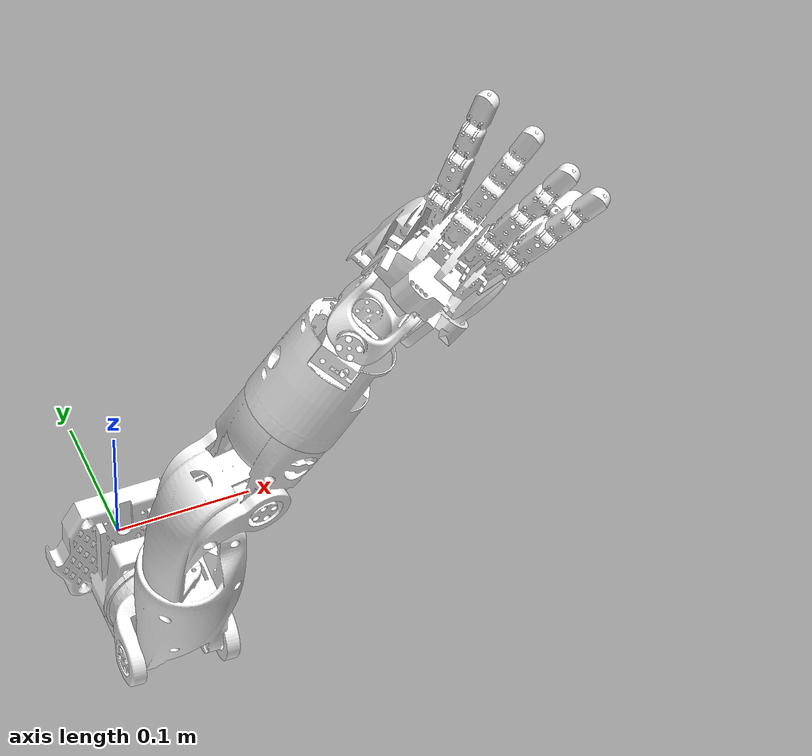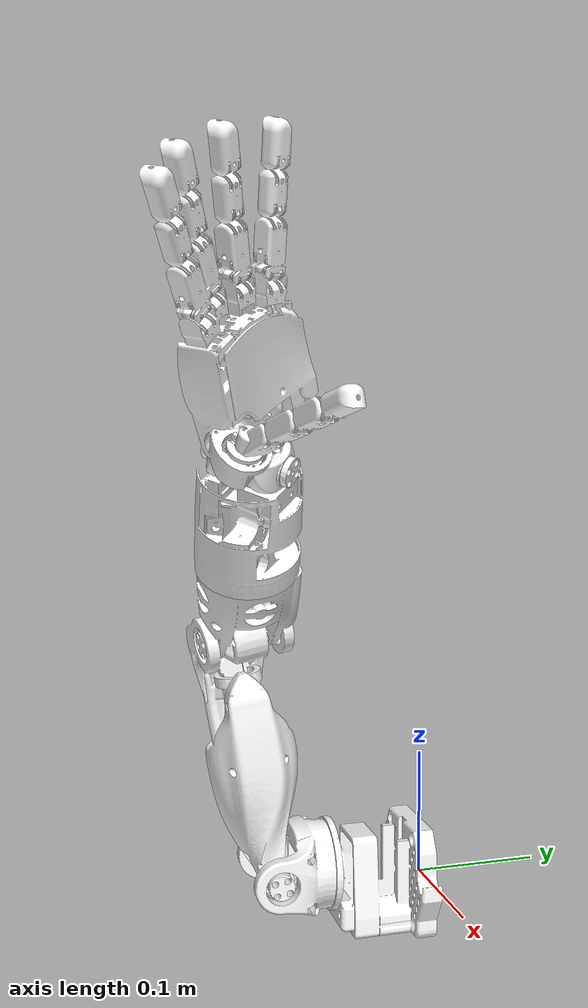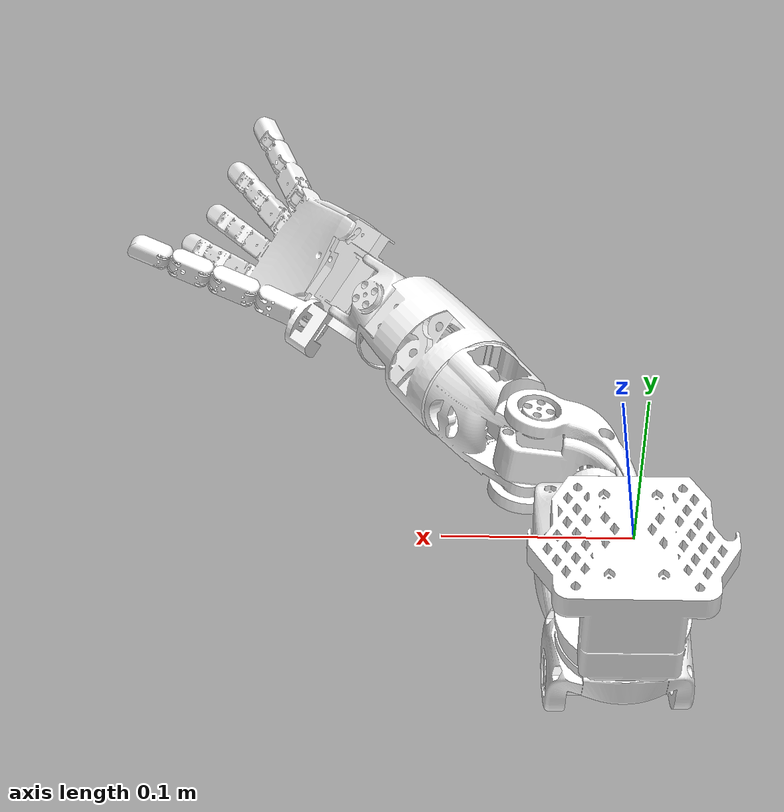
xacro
<?xml version="1.0"?>
<robot xmlns:xacro="http://www.ros.org/wiki/xacro" name="Arm_urdf">
    <xacro:arg name="initial_positions_file" default="initial_positions.yaml" />

    <!-- Import Arm_urdf urdf file -->
    <xacro:include filename="$(find Arm_urdf)/urdf/Arm_urdf.urdf" />

    <!-- Import control_xacro -->
    <xacro:include filename="Arm_urdf.ros2_control.xacro" />

    <xacro:Arm_urdf_ros2_control name="FakeSystem" initial_positions_file="$(arg initial_positions_file)"/>

</robot>

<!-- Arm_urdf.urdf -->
<robot
  name="Arm_urdf">
  <link
    name="base_link">
    <inertial>
      <origin
        xyz="0.00023729 -0.029773 -0.005728"
        rpy="0 0 0" />
      <mass
        value="0.20293" />
      <inertia
        ixx="0.00017245"
        ixy="4.1786E-07"
        ixz="-4.8345E-07"
        iyy="0.00021038"
        iyz="-3.0627E-05"
        izz="0.00015077" />
    </inertial>
    <visual>
      <origin
        xyz="0 0 0"
        rpy="0 0 0" />
      <geometry>
        <mesh
          filename="package://Arm_urdf/meshes/base_link.STL" />
      </geometry>
      <material
        name="">
        <color
          rgba="1 1 1 1" />
      </material>
    </visual>
    <collision>
      <origin
        xyz="0 0 0"
        rpy="0 0 0" />
      <geometry>
        <mesh
          filename="package://Arm_urdf/meshes/base_link.STL" />
      </geometry>
    </collision>
  </link>
  <link
    name="Link_1">
    <inertial>
      <origin
        xyz="-0.00015608 -0.029206 0.0011045"
        rpy="0 0 0" />
      <mass
        value="0.11071" />
      <inertia
        ixx="3.5305E-05"
        ixy="-9.4741E-09"
        ixz="-1.082E-07"
        iyy="2.324E-05"
        iyz="1.3454E-07"
        izz="3.2077E-05" />
    </inertial>
    <visual>
      <origin
        xyz="0 0 0"
        rpy="0 0 0" />
      <geometry>
        <mesh
          filename="package://Arm_urdf/meshes/Link_1.STL" />
      </geometry>
      <material
        name="">
        <color
          rgba="1 1 1 1" />
      </material>
    </visual>
    <collision>
      <origin
        xyz="0 0 0"
        rpy="0 0 0" />
      <geometry>
        <mesh
          filename="package://Arm_urdf/meshes/Link_1.STL" />
      </geometry>
    </collision>
  </link>
  <joint
    name="Joint_1"
    type="continuous">
    <origin
      xyz="-0.00051497 -0.067362 0.014563"
      rpy="0 0 0" />
    <parent
      link="base_link" />
    <child
      link="Link_1" />
    <axis
      xyz="0 -1 0" />
    <limit
      lower="0"
      upper="0"
      effort="0"
      velocity="0" />
  </joint>
  <link
    name="Link_2">
    <inertial>
      <origin
        xyz="-0.035445 -0.012976 0.071106"
        rpy="0 0 0" />
      <mass
        value="0.26865" />
      <inertia
        ixx="0.0002599"
        ixy="2.8092E-06"
        ixz="-4.2547E-05"
        iyy="0.00034834"
        iyz="1.5542E-05"
        izz="0.00013303" />
    </inertial>
    <visual>
      <origin
        xyz="0 0 0"
        rpy="0 0 0" />
      <geometry>
        <mesh
          filename="package://Arm_urdf/meshes/Link_2.STL" />
      </geometry>
      <material
        name="">
        <color
          rgba="1 1 1 1" />
      </material>
    </visual>
    <collision>
      <origin
        xyz="0 0 0"
        rpy="0 0 0" />
      <geometry>
        <mesh
          filename="package://Arm_urdf/meshes/Link_2.STL" />
      </geometry>
    </collision>
  </link>
  <joint
    name="Joint_2"
    type="revolute">
    <origin
      xyz="0.040276 -0.056 -0.0011666"
      rpy="0 0 0" />
    <parent
      link="Link_1" />
    <child
      link="Link_2" />
    <axis
      xyz="0.99939 0 -0.034899" />
    <limit
      lower="-0.1"
      upper="2.7"
      effort="0"
      velocity="0" />
  </joint>
  <link
    name="Link_3">
    <inertial>
      <origin
        xyz="0.0029697 -0.0033585 0.021864"
        rpy="0 0 0" />
      <mass
        value="0.12862" />
      <inertia
        ixx="0.00013343"
        ixy="1.1319E-06"
        ixz="-5.0845E-05"
        iyy="0.00018346"
        iyz="1.3898E-05"
        izz="6.271E-05" />
    </inertial>
    <visual>
      <origin
        xyz="0 0 0"
        rpy="0 0 0" />
      <geometry>
        <mesh
          filename="package://Arm_urdf/meshes/Link_3.STL" />
      </geometry>
      <material
        name="">
        <color
          rgba="1 1 1 1" />
      </material>
    </visual>
    <collision>
      <origin
        xyz="0 0 0"
        rpy="0 0 0" />
      <geometry>
        <mesh
          filename="package://Arm_urdf/meshes/Link_3.STL" />
      </geometry>
    </collision>
  </link>
  <joint
    name="Joint_3"
    type="revolute">
    <origin
      xyz="-0.038652 -0.024501 0.14475"
      rpy="0 0 0" />
    <parent
      link="Link_2" />
    <child
      link="Link_3" />
    <axis
      xyz="0.024925 -0.16804 0.98546" />
    <limit
      lower="-1.46"
      upper="1.20"
      effort="0"
      velocity="0" />
  </joint>
  <link
    name="Link_4">
    <inertial>
      <origin
        xyz="0.015842 0.029079 0.040767"
        rpy="0 0 0" />
      <mass
        value="0.085467" />
      <inertia
        ixx="3.1068E-05"
        ixy="-7.2268E-07"
        ixz="-9.2077E-06"
        iyy="4.4353E-05"
        iyz="2.1413E-06"
        izz="2.2194E-05" />
    </inertial>
    <visual>
      <origin
        xyz="0 0 0"
        rpy="0 0 0" />
      <geometry>
        <mesh
          filename="package://Arm_urdf/meshes/Link_4.STL" />
      </geometry>
      <material
        name="">
        <color
          rgba="1 1 1 1" />
      </material>
    </visual>
    <collision>
      <origin
        xyz="0 0 0"
        rpy="0 0 0" />
      <geometry>
        <mesh
          filename="package://Arm_urdf/meshes/Link_4.STL" />
      </geometry>
    </collision>
  </link>
  <joint
    name="Joint_4"
    type="revolute">
    <origin
      xyz="0.043801 -0.035078 0.047707"
      rpy="0 0 0" />
    <parent
      link="Link_3" />
    <child
      link="Link_4" />
    <axis
      xyz="0.14399 -0.97489 -0.16988" />
    <limit
      lower="-1.90"
      upper="0.50"
      effort="0"
      velocity="0" />
  </joint>
  <link
    name="Link_5">
    <inertial>
      <origin
        xyz="0.0189420196962599 7.81016898752374E-05 0.0352984344105795"
        rpy="0 0 0" />
      <mass
        value="0.090721644131545" />
      <inertia
        ixx="6.09731078201487E-05"
        ixy="5.79175133763387E-06"
        ixz="-6.52412539068886E-06"
        iyy="6.61898439393332E-05"
        iyz="-7.23406883275487E-06"
        izz="4.52650445318259E-05" />
    </inertial>
    <visual>
      <origin
        xyz="0 0 0"
        rpy="0 0 0" />
      <geometry>
        <mesh
          filename="package://Arm_urdf/meshes/Link_5.STL" />
      </geometry>
      <material
        name="">
        <color
          rgba="1 1 1 1" />
      </material>
    </visual>
    <collision>
      <origin
        xyz="0 0 0"
        rpy="0 0 0" />
      <geometry>
        <mesh
          filename="package://Arm_urdf/meshes/Link_5.STL" />
      </geometry>
    </collision>
  </link>
  <joint
    name="Joint_5"
    type="revolute">
    <origin
      xyz="0.028905 0.029268 0.059038"
      rpy="0 0 0" />
    <parent
      link="Link_4" />
    <child
      link="Link_5" />
    <axis
      xyz="-0.53574 0.067541 -0.84168" />
    <limit
      lower="-3.45"
      upper="1.40"
      effort="0"
      velocity="0" />
  </joint>
  <link
    name="Link_6">
    <inertial>
      <origin
        xyz="0.02393 0.022053 -0.0026248"
        rpy="0 0 0" />
      <mass
        value="0.025948" />
      <inertia
        ixx="1.2355E-05"
        ixy="-5.0682E-07"
        ixz="1.4834E-06"
        iyy="1.128E-05"
        iyz="6.5829E-08"
        izz="1.3721E-05" />
    </inertial>
    <visual>
      <origin
        xyz="0 0 0"
        rpy="0 0 0" />
      <geometry>
        <mesh
          filename="package://Arm_urdf/meshes/Link_6.STL" />
      </geometry>
      <material
        name="">
        <color
          rgba="1 1 1 1" />
      </material>
    </visual>
    <collision>
      <origin
        xyz="0 0 0"
        rpy="0 0 0" />
      <geometry>
        <mesh
          filename="package://Arm_urdf/meshes/Link_6.STL" />
      </geometry>
    </collision>
  </link>
  <joint
    name="Joint_6"
    type="revolute">
    <origin
      xyz="0.031341 -0.030097 0.086442"
      rpy="0 0 0" />
    <parent
      link="Link_5" />
    <child
      link="Link_6" />
    <axis
      xyz="0.568 0.76639 -0.30004" />
    <limit
      lower="-0.40"
      upper="0.40"
      effort="0"
      velocity="0" />
  </joint>
  <link
    name="Link_7">
    <inertial>
      <origin
        xyz="0.040261 0.0042093 0.072717"
        rpy="0 0 0" />
      <mass
        value="0.14878" />
      <inertia
        ixx="4.0997E-05"
        ixy="1.1883E-05"
        ixz="-7.7908E-07"
        iyy="3.934E-05"
        iyz="-5.0591E-06"
        izz="4.4142E-05" />
    </inertial>
    <visual>
      <origin
        xyz="0 0 0"
        rpy="0 0 0" />
      <geometry>
        <mesh
          filename="package://Arm_urdf/meshes/Link_7.STL" />
      </geometry>
      <material
        name="">
        <color
          rgba="1 1 1 1" />
      </material>
    </visual>
    <collision>
      <origin
        xyz="0 0 0"
        rpy="0 0 0" />
      <geometry>
        <mesh
          filename="package://Arm_urdf/meshes/Link_7.STL" />
      </geometry>
    </collision>
  </link>
  <joint
    name="Joint_7"
    type="revolute">
    <origin
      xyz="0.052865 0.00065737 -0.0026763"
      rpy="0 0 0" />
    <parent
      link="Link_6" />
    <child
      link="Link_7" />
    <axis
      xyz="-0.54666 0.61513 0.56813" />
    <limit
      lower="-1.25"
      upper="1.3"
      effort="0"
      velocity="0" />
  </joint>
</robot>
